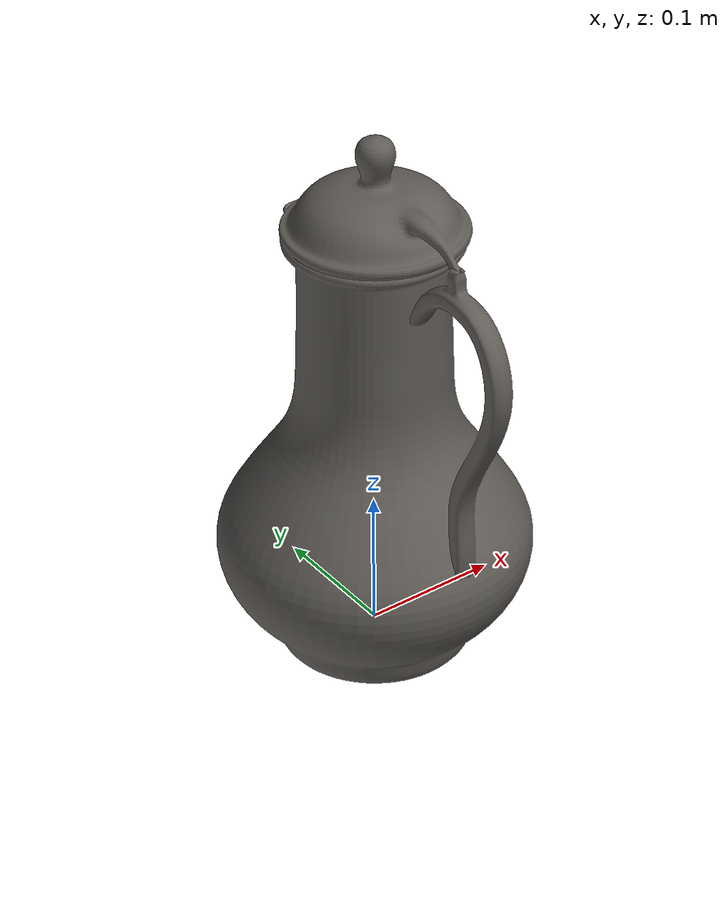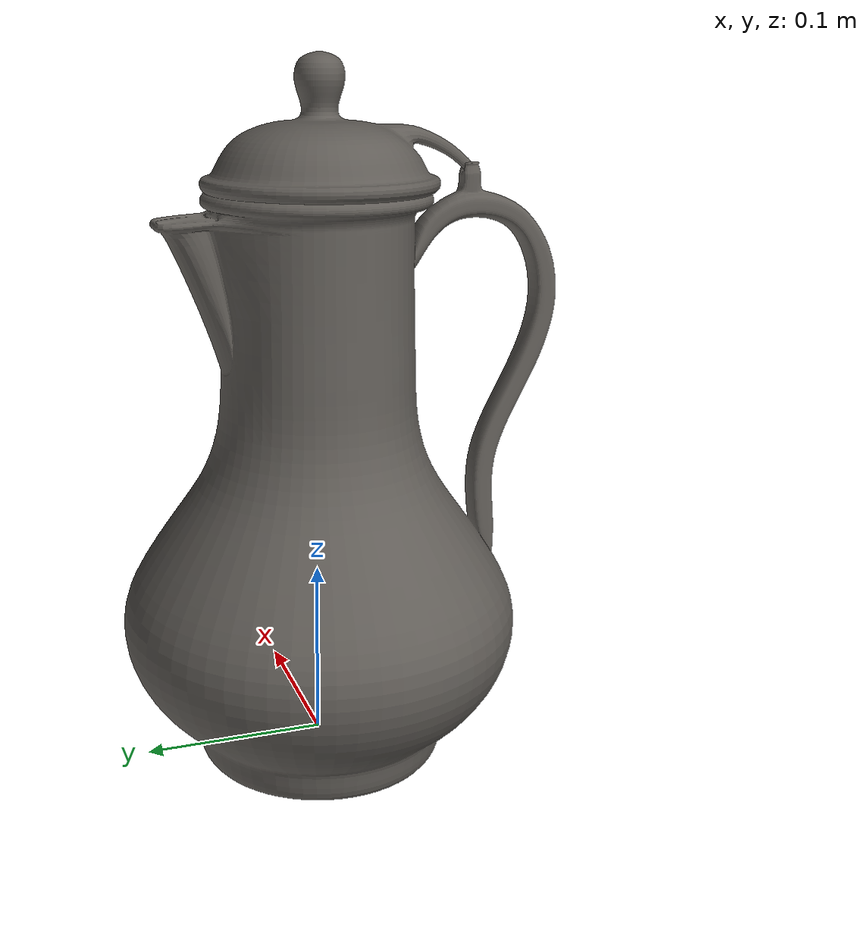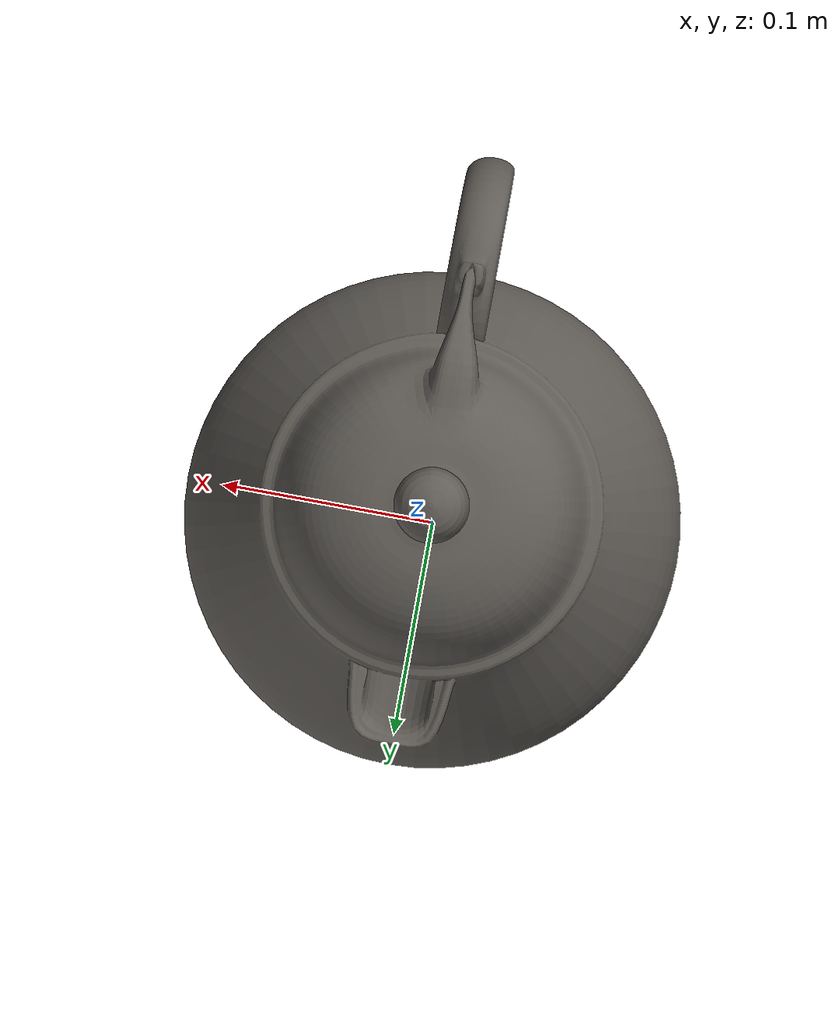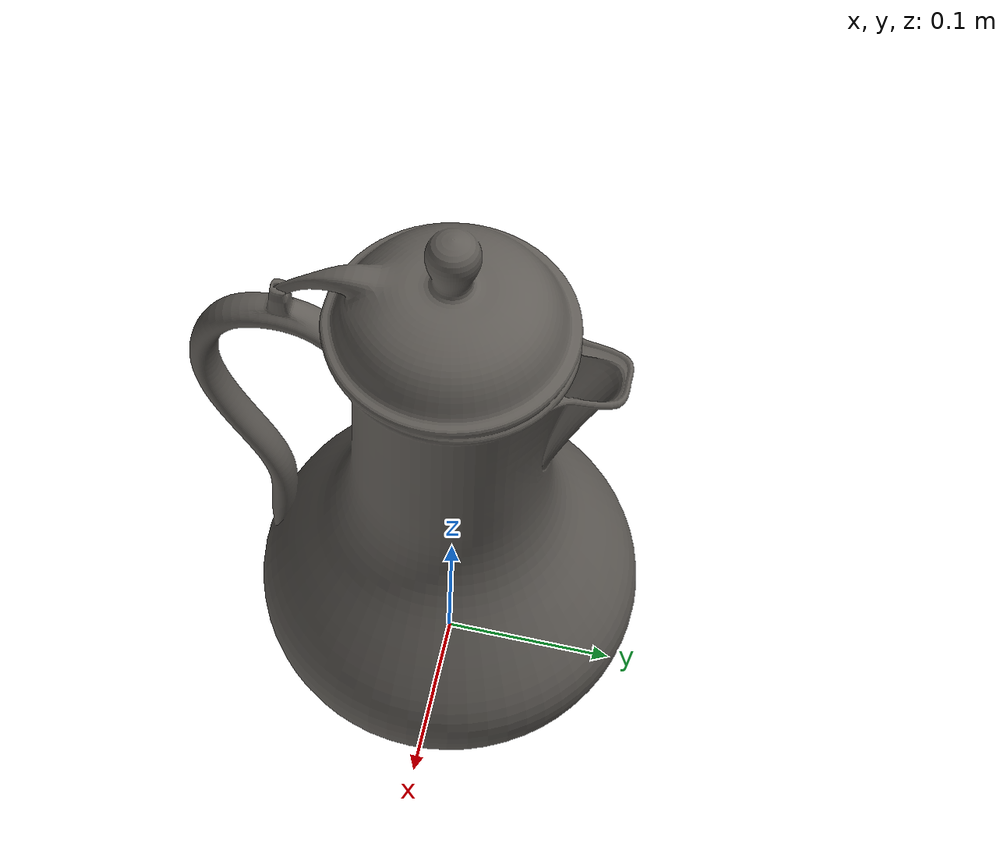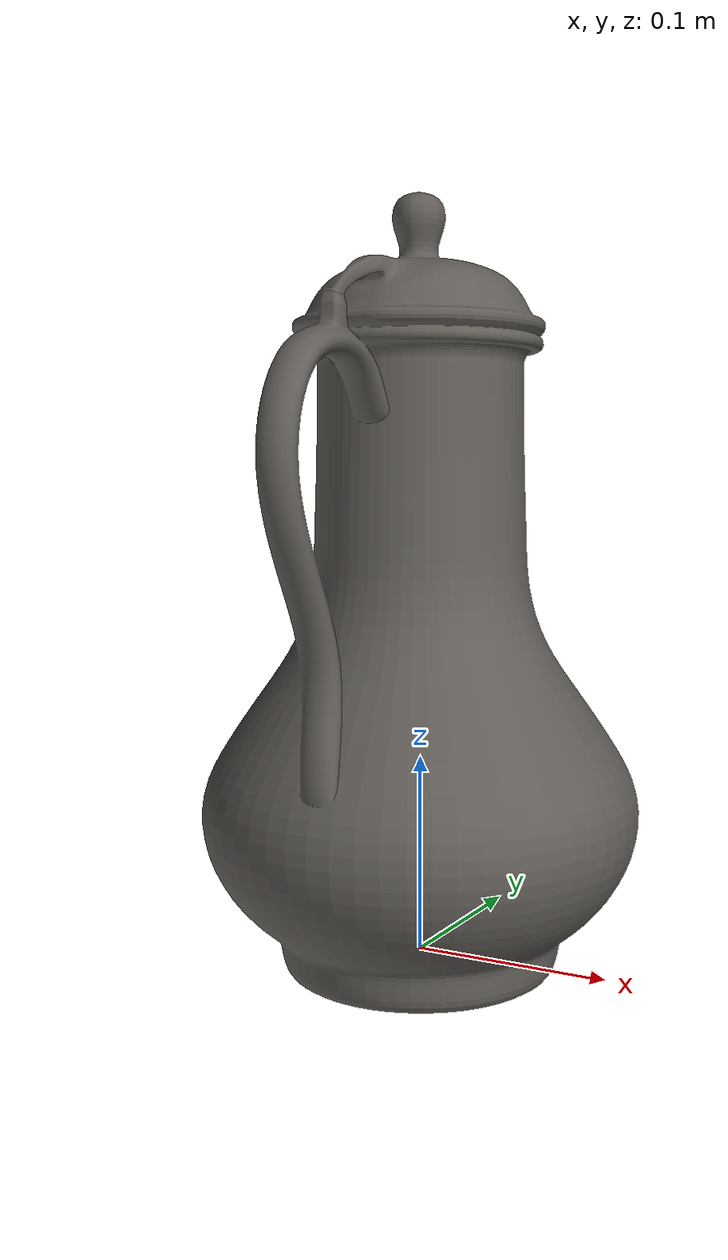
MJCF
<mujoco model="teapot_1">
  <compiler angle="radian"/>

  <asset>
    <mesh name="teapot_mesh" file="meshes/teapot_1.obj" scale="1 1 1"/>
    <texture type="2d" name="teapot_tex" file="meshes/old_teapot.png" />
    <material name="teapot_mat" texture="teapot_tex" specular="0.5" shininess="0.5" rgba="0.5 0.5 0.5 1" />
  </asset>

  <worldbody>
    <body name="body_teapot_1" pos="0 0 0">
      <!-- Cabinet body  -->
      <geom type="mesh" mesh="teapot_mesh" pos="0 0 0" quat="1 0 0 0" material="teapot_mat"/>
    </body>
  </worldbody>

</mujoco>
